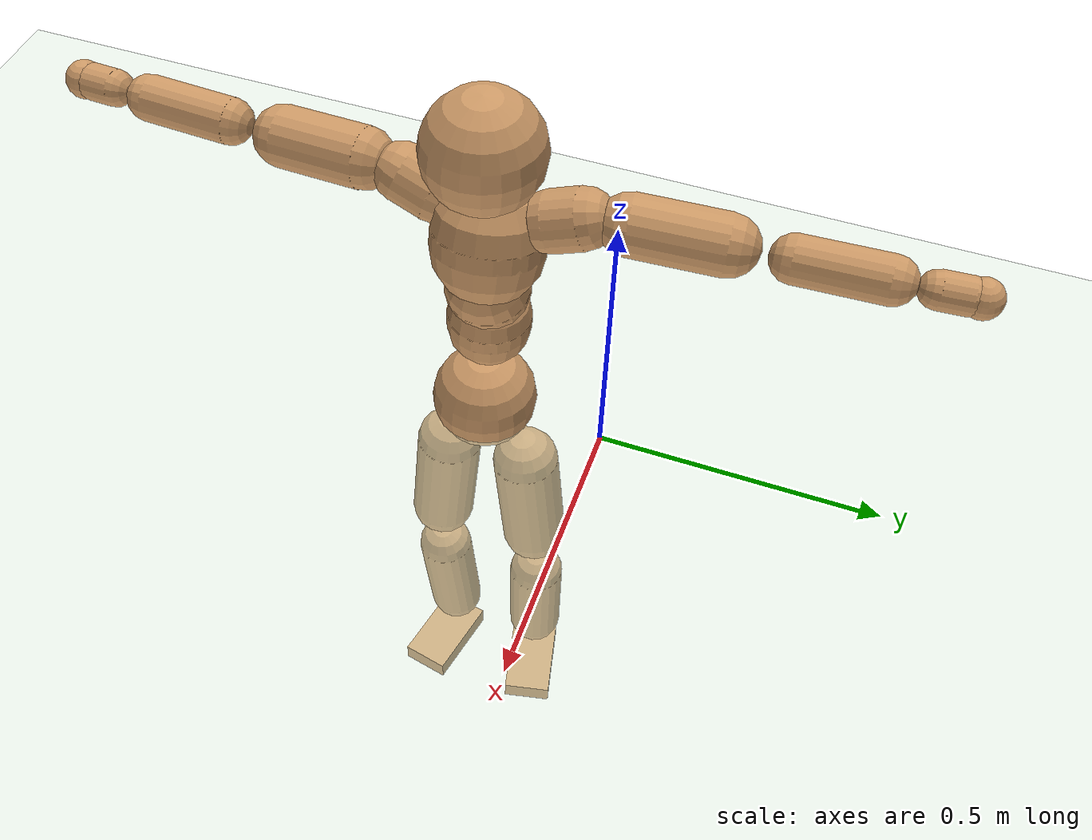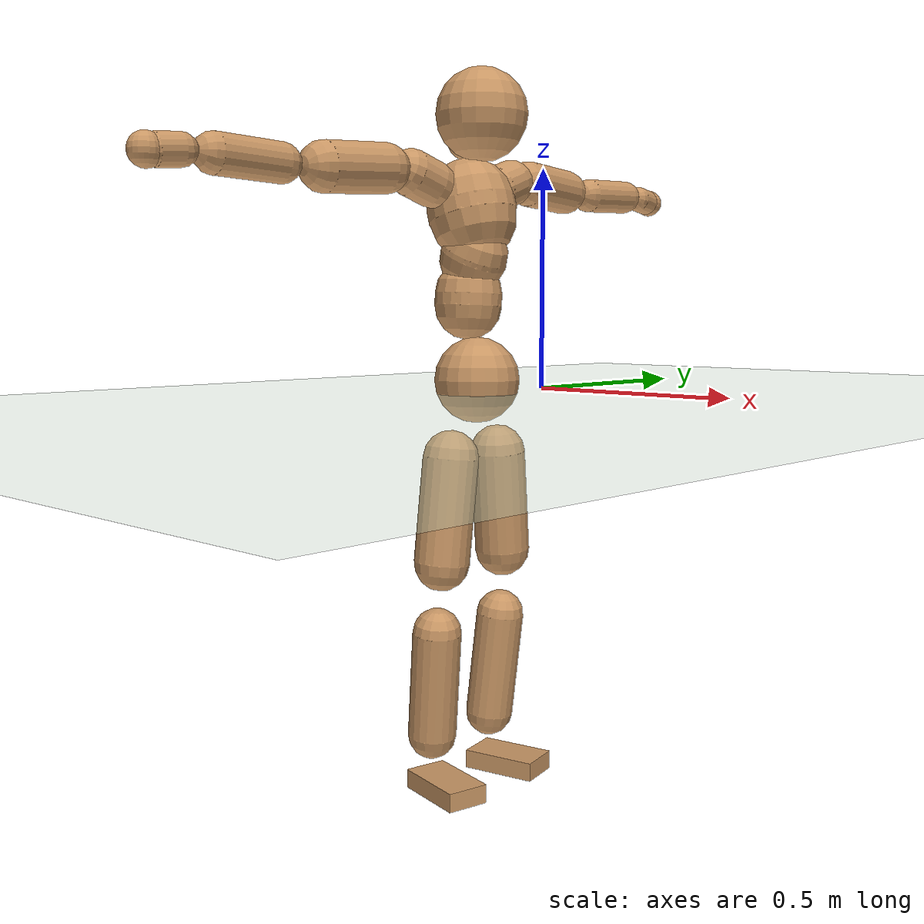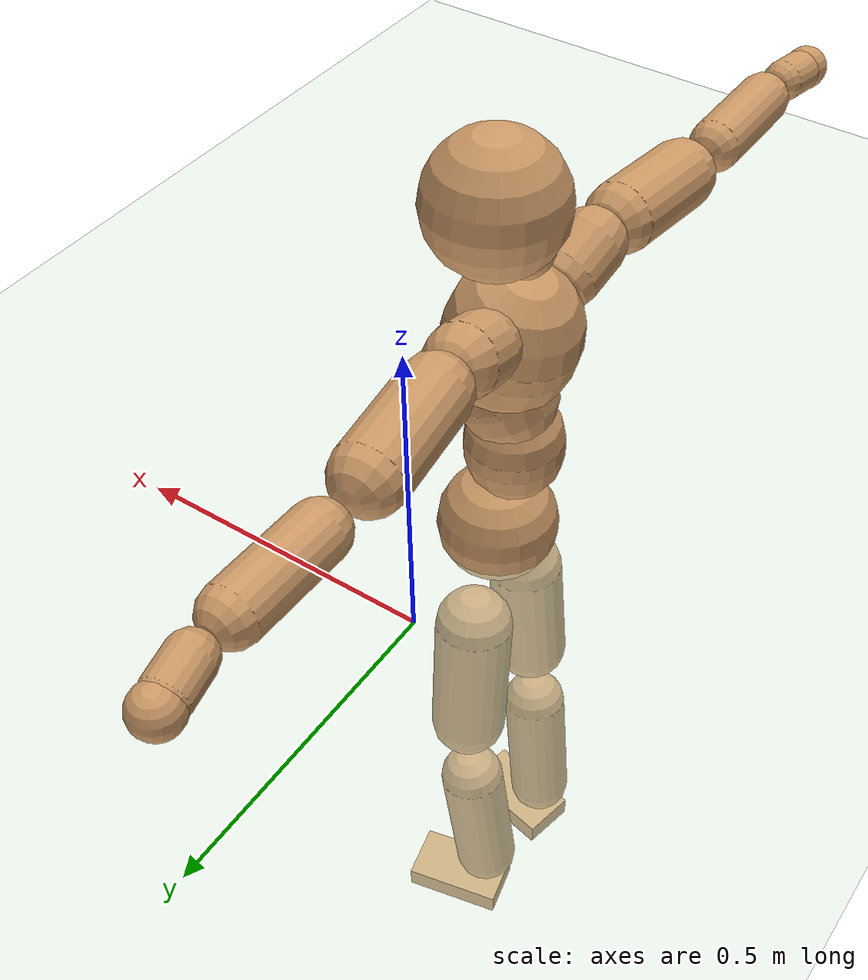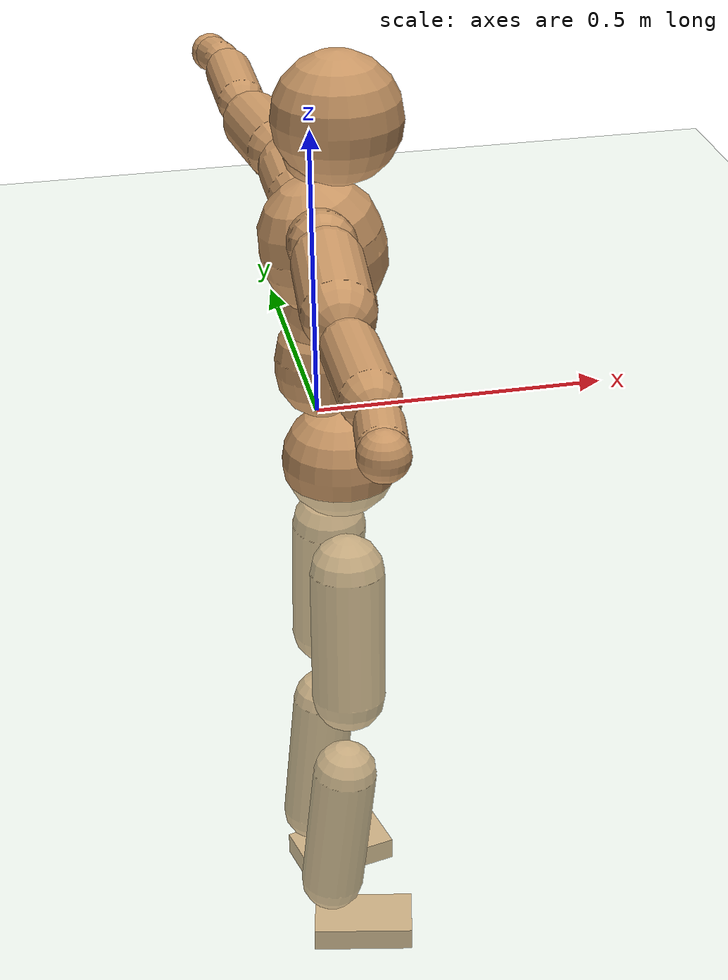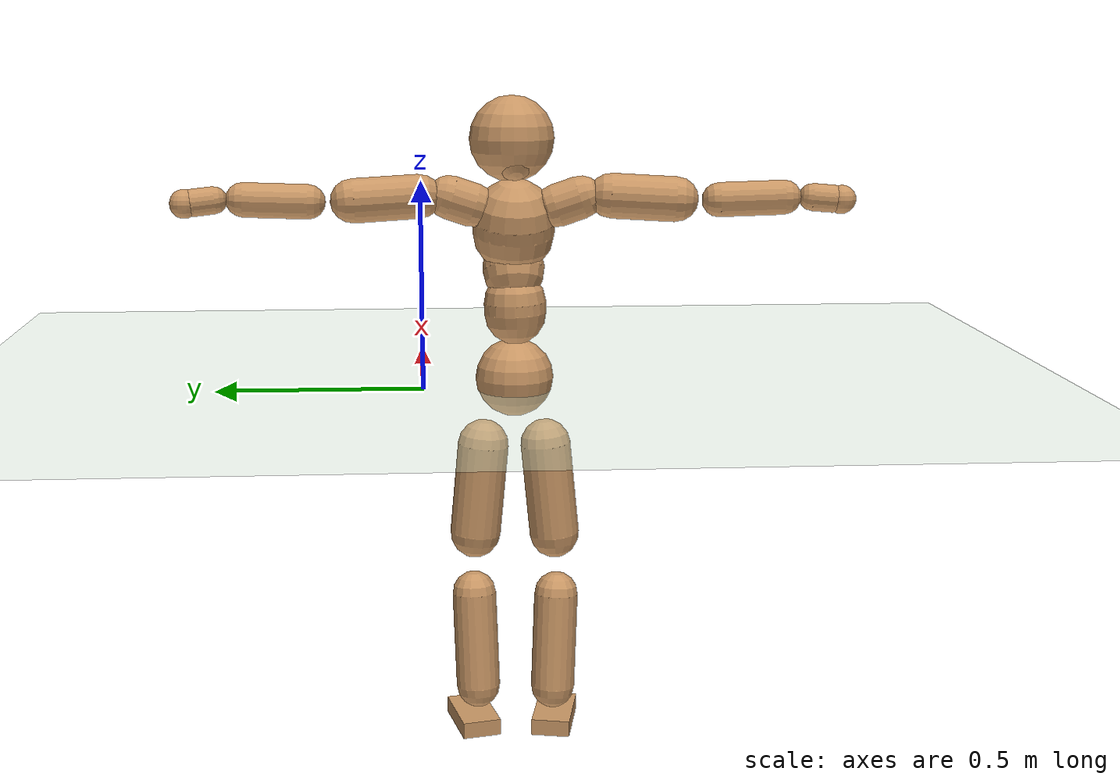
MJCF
<mujoco model="humanoid">
  <compiler coordinate="local"/>
  <default>
    <joint damping="0.0" armature="0.01" stiffness="0.0" limited="true"/>
    <geom conaffinity="1" condim="3" contype="7" margin="0.001" rgba="0.8 0.6 .4 1"/>
  </default>
  <asset>
    <texture type="skybox" builtin="gradient" rgb1=".4 .5 .6" rgb2="0 0 0" width="100" height="100"/>
    <texture builtin="flat" height="1278" mark="cross" markrgb="1 1 1" name="texgeom" random="0.01" rgb1="0.8 0.6 0.4" rgb2="0.8 0.6 0.4" type="cube" width="127"/>
    <texture builtin="checker" height="100" name="texplane" rgb1="0 0 0" rgb2="0.8 0.8 0.8" type="2d" width="100"/>
    <material name="MatPlane" reflectance="0.5" shininess="1" specular="1" texrepeat="60 60" texture="texplane"/>
    <material name="geom" texture="texgeom" texuniform="true"/>
  </asset>
  <worldbody>
    <light cutoff="100" diffuse="1 1 1" dir="-0 0 -1.3" directional="true" exponent="1" pos="0 0 1.3" specular=".1 .1 .1"/>
    <geom conaffinity="1" condim="3" name="floor" pos="0 0 0" rgba="0.8 0.9 0.8 1" size="100 100 .2" type="plane" material="MatPlane"/>
    <body name="Pelvis" pos="-0.0017 -0.2199 0.0279">
      <freejoint name="Pelvis"/>
      <geom type="sphere" contype="1" conaffinity="1" density="500" size="0.0941" pos="0.0000 0.0000 0.0000" name="Pelvis"/>
      <body name="L_Hip" pos="-0.007 0.07 -0.0911">
        <joint name="L_Hip_x" type="hinge" pos="0 0 0" axis="1 0 0" stiffness="800" damping="80" armature="0.02" range="-180.0000 180.0000"/>
        <joint name="L_Hip_y" type="hinge" pos="0 0 0" axis="0 1 0" stiffness="800" damping="80" armature="0.02" range="-180.0000 180.0000"/>
        <joint name="L_Hip_z" type="hinge" pos="0 0 0" axis="0 0 1" stiffness="800" damping="80" armature="0.02" range="-180.0000 180.0000"/>
        <geom type="capsule" contype="1" conaffinity="1" density="500" fromto="-0.0010 0.0068 -0.0750 -0.0040 0.0271 -0.2999" size="0.0617" name="L_Hip"/>
        <body name="L_Knee" pos="-0.0051 0.0339 -0.3749">
          <joint name="L_Knee_x" type="hinge" pos="0 0 0" axis="1 0 0" stiffness="800" damping="80" armature="0.02" range="-180.0000 180.0000"/>
          <joint name="L_Knee_y" type="hinge" pos="0 0 0" axis="0 1 0" stiffness="800" damping="80" armature="0.02" range="-180.0000 180.0000"/>
          <joint name="L_Knee_z" type="hinge" pos="0 0 0" axis="0 0 1" stiffness="800" damping="80" armature="0.02" range="-180.0000 180.0000"/>
          <geom type="capsule" contype="1" conaffinity="1" density="500" fromto="-0.0088 -0.0026 -0.0792 -0.0351 -0.0105 -0.3170" size="0.0539" name="L_Knee"/>
          <body name="L_Ankle" pos="-0.0438 -0.0131 -0.3962">
            <joint name="L_Ankle_x" type="hinge" pos="0 0 0" axis="1 0 0" stiffness="800" damping="80" armature="0.02" range="-180.0000 180.0000"/>
            <joint name="L_Ankle_y" type="hinge" pos="0 0 0" axis="0 1 0" stiffness="800" damping="80" armature="0.02" range="-180.0000 180.0000"/>
            <joint name="L_Ankle_z" type="hinge" pos="0 0 0" axis="0 0 1" stiffness="800" damping="80" armature="0.02" range="-180.0000 180.0000"/>
            <geom type="box" contype="1" conaffinity="1" density="500" pos="0.0590 0.0131 -0.0278" size="0.0841 0.0479 0.0206" quat="0.9940 0.0000 0.0000 0.1091" name="L_Ankle"/>
            <body name="L_Toe" pos="0.118 0.0262 -0.0556">
              <joint name="L_Toe_x" type="hinge" pos="0 0 0" axis="1 0 0" stiffness="500" damping="50" armature="0.02" range="-180.0000 180.0000"/>
              <joint name="L_Toe_y" type="hinge" pos="0 0 0" axis="0 1 0" stiffness="500" damping="50" armature="0.02" range="-180.0000 180.0000"/>
              <joint name="L_Toe_z" type="hinge" pos="0 0 0" axis="0 0 1" stiffness="500" damping="50" armature="0.02" range="-180.0000 180.0000"/>
              <geom type="box" contype="1" conaffinity="1" density="500" pos="0.0000 0.0000 0.0270" size="0.001 0.0024 0.001" quat="0.9933 0.0000 0.0000 0.1152" name="L_Toe"/>
            </body>
          </body>
        </body>
      </body>
      <body name="R_Hip" pos="-0.0044 -0.0681 -0.0903">
        <joint name="R_Hip_x" type="hinge" pos="0 0 0" axis="1 0 0" stiffness="800" damping="80" armature="0.02" range="-180.0000 180.0000"/>
        <joint name="R_Hip_y" type="hinge" pos="0 0 0" axis="0 1 0" stiffness="800" damping="80" armature="0.02" range="-180.0000 180.0000"/>
        <joint name="R_Hip_z" type="hinge" pos="0 0 0" axis="0 0 1" stiffness="800" damping="80" armature="0.02" range="-180.0000 180.0000"/>
        <geom type="capsule" contype="1" conaffinity="1" density="500" fromto="-0.0018 -0.0076 -0.0764 -0.0073 -0.0305 -0.3055" size="0.0608" name="R_Hip"/>
        <body name="R_Knee" pos="-0.0092 -0.0382 -0.3819">
          <joint name="R_Knee_x" type="hinge" pos="0 0 0" axis="1 0 0" stiffness="800" damping="80" armature="0.02" range="-180.0000 180.0000"/>
          <joint name="R_Knee_y" type="hinge" pos="0 0 0" axis="0 1 0" stiffness="800" damping="80" armature="0.02" range="-180.0000 180.0000"/>
          <joint name="R_Knee_z" type="hinge" pos="0 0 0" axis="0 0 1" stiffness="800" damping="80" armature="0.02" range="-180.0000 180.0000"/>
          <geom type="capsule" contype="1" conaffinity="1" density="500" fromto="-0.0085 0.0031 -0.0793 -0.0339 0.0123 -0.3173" size="0.054" name="R_Knee"/>
          <body name="R_Ankle" pos="-0.0424 0.0154 -0.3966">
            <joint name="R_Ankle_x" type="hinge" pos="0 0 0" axis="1 0 0" stiffness="800" damping="80" armature="0.02" range="-180.0000 180.0000"/>
            <joint name="R_Ankle_y" type="hinge" pos="0 0 0" axis="0 1 0" stiffness="800" damping="80" armature="0.02" range="-180.0000 180.0000"/>
            <joint name="R_Ankle_z" type="hinge" pos="0 0 0" axis="0 0 1" stiffness="800" damping="80" armature="0.02" range="-180.0000 180.0000"/>
            <geom type="box" contype="1" conaffinity="1" density="500" pos="0.0610 -0.0125 -0.0240" size="0.0856 0.0477 0.0206" quat="0.9949 0.0000 0.0000 -0.1011" name="R_Ankle"/>
            <body name="R_Toe" pos="0.122 -0.0251 -0.048">
              <joint name="R_Toe_x" type="hinge" pos="0 0 0" axis="1 0 0" stiffness="500" damping="50" armature="0.02" range="-180.0000 180.0000"/>
              <joint name="R_Toe_y" type="hinge" pos="0 0 0" axis="0 1 0" stiffness="500" damping="50" armature="0.02" range="-180.0000 180.0000"/>
              <joint name="R_Toe_z" type="hinge" pos="0 0 0" axis="0 0 1" stiffness="500" damping="50" armature="0.02" range="-180.0000 180.0000"/>
              <geom type="box" contype="1" conaffinity="1" density="500" pos="0.0000 0.0000 0.0250" size="0.001 0.0024 0.0011" quat="0.9958 0.0000 0.0000 -0.0918" name="R_Toe"/>
            </body>
          </body>
        </body>
      </body>
      <body name="Torso" pos="-0.0259 -0.0025 0.108">
        <joint name="Torso_x" type="hinge" pos="0 0 0" axis="1 0 0" stiffness="1000" damping="100" armature="0.02" range="-180.0000 180.0000"/>
        <joint name="Torso_y" type="hinge" pos="0 0 0" axis="0 1 0" stiffness="1000" damping="100" armature="0.02" range="-180.0000 180.0000"/>
        <joint name="Torso_z" type="hinge" pos="0 0 0" axis="0 0 1" stiffness="1000" damping="100" armature="0.02" range="-180.0000 180.0000"/>
        <geom type="capsule" contype="1" conaffinity="1" density="500" fromto="0.0005 0.0031 0.0801 0.0003 0.0021 0.0534" size="0.0739" name="Torso"/>
        <body name="Spine" pos="0.0008 0.0051 0.1335">
          <joint name="Spine_x" type="hinge" pos="0 0 0" axis="1 0 0" stiffness="1000" damping="100" armature="0.02" range="-180.0000 180.0000"/>
          <joint name="Spine_y" type="hinge" pos="0 0 0" axis="0 1 0" stiffness="1000" damping="100" armature="0.02" range="-180.0000 180.0000"/>
          <joint name="Spine_z" type="hinge" pos="0 0 0" axis="0 0 1" stiffness="1000" damping="100" armature="0.02" range="-180.0000 180.0000"/>
          <geom type="capsule" contype="1" conaffinity="1" density="500" fromto="0.0155 0.0009 0.0312 0.0104 0.0006 0.0208" size="0.0737" name="Spine"/>
          <body name="Chest" pos="0.0259 0.0015 0.0521">
            <joint name="Chest_x" type="hinge" pos="0 0 0" axis="1 0 0" stiffness="1000" damping="100" armature="0.02" range="-180.0000 180.0000"/>
            <joint name="Chest_y" type="hinge" pos="0 0 0" axis="0 1 0" stiffness="1000" damping="100" armature="0.02" range="-180.0000 180.0000"/>
            <joint name="Chest_z" type="hinge" pos="0 0 0" axis="0 0 1" stiffness="1000" damping="100" armature="0.02" range="-180.0000 180.0000"/>
            <geom type="capsule" contype="1" conaffinity="1" density="500" fromto="-0.0232 -0.0011 0.0899 -0.0155 -0.0007 0.0600" size="0.0969" name="Chest"/>
            <body name="Neck" pos="-0.0435 -0.0027 0.2115">
              <joint name="Neck_x" type="hinge" pos="0 0 0" axis="1 0 0" stiffness="500" damping="50" armature="0.02" range="-180.0000 180.0000"/>
              <joint name="Neck_y" type="hinge" pos="0 0 0" axis="0 1 0" stiffness="500" damping="50" armature="0.02" range="-180.0000 180.0000"/>
              <joint name="Neck_z" type="hinge" pos="0 0 0" axis="0 0 1" stiffness="500" damping="50" armature="0.02" range="-180.0000 180.0000"/>
              <geom type="capsule" contype="1" conaffinity="1" density="500" fromto="0.0101 0.0010 0.0128 0.0406 0.0038 0.0512" size="0.043" name="Neck"/>
              <body name="Head" pos="0.0507 0.0048 0.064">
                <joint name="Head_x" type="hinge" pos="0 0 0" axis="1 0 0" stiffness="500" damping="50" armature="0.02" range="-180.0000 180.0000"/>
                <joint name="Head_y" type="hinge" pos="0 0 0" axis="0 1 0" stiffness="500" damping="50" armature="0.02" range="-180.0000 180.0000"/>
                <joint name="Head_z" type="hinge" pos="0 0 0" axis="0 0 1" stiffness="500" damping="50" armature="0.02" range="-180.0000 180.0000"/>
                <geom type="sphere" contype="1" conaffinity="1" density="500" size="0.1003" pos="0.0000 0.0000 0.0000" name="Head"/>
              </body>
            </body>
            <body name="L_Thorax" pos="-0.0339 0.0783 0.1205">
              <joint name="L_Thorax_x" type="hinge" pos="0 0 0" axis="1 0 0" stiffness="500" damping="50" armature="0.02" range="-180.0000 180.0000"/>
              <joint name="L_Thorax_y" type="hinge" pos="0 0 0" axis="0 1 0" stiffness="500" damping="50" armature="0.02" range="-180.0000 180.0000"/>
              <joint name="L_Thorax_z" type="hinge" pos="0 0 0" axis="0 0 1" stiffness="500" damping="50" armature="0.02" range="-180.0000 180.0000"/>
              <geom type="capsule" contype="1" conaffinity="1" density="500" fromto="-0.0018 0.0180 0.0061 -0.0071 0.0718 0.0246" size="0.0516" name="L_Thorax"/>
              <body name="L_Shoulder" pos="-0.0088 0.0898 0.0307">
                <joint name="L_Shoulder_x" type="hinge" pos="0 0 0" axis="1 0 0" stiffness="500" damping="50" armature="0.02" range="-720.0000 720.0000"/>
                <joint name="L_Shoulder_y" type="hinge" pos="0 0 0" axis="0 1 0" stiffness="500" damping="50" armature="0.02" range="-720.0000 720.0000"/>
                <joint name="L_Shoulder_z" type="hinge" pos="0 0 0" axis="0 0 1" stiffness="500" damping="50" armature="0.02" range="-720.0000 720.0000"/>
                <geom type="capsule" contype="1" conaffinity="1" density="500" fromto="-0.0055 0.0515 -0.0025 -0.0220 0.2059 -0.0101" size="0.0514" name="L_Shoulder"/>
                <body name="L_Elbow" pos="-0.0275 0.2574 -0.0126">
                  <joint name="L_Elbow_x" type="hinge" pos="0 0 0" axis="1 0 0" stiffness="500" damping="50" armature="0.02" range="-720.0000 720.0000"/>
                  <joint name="L_Elbow_y" type="hinge" pos="0 0 0" axis="0 1 0" stiffness="500" damping="50" armature="0.02" range="-720.0000 720.0000"/>
                  <joint name="L_Elbow_z" type="hinge" pos="0 0 0" axis="0 0 1" stiffness="500" damping="50" armature="0.02" range="-720.0000 720.0000"/>
                  <geom type="capsule" contype="1" conaffinity="1" density="500" fromto="-0.0002 0.0493 0.0018 -0.0008 0.1972 0.0072" size="0.0401" name="L_Elbow"/>
                  <body name="L_Wrist" pos="-0.0011 0.2465 0.009">
                    <joint name="L_Wrist_x" type="hinge" pos="0 0 0" axis="1 0 0" stiffness="300" damping="30" armature="0.02" range="-180.0000 180.0000"/>
                    <joint name="L_Wrist_y" type="hinge" pos="0 0 0" axis="0 1 0" stiffness="300" damping="30" armature="0.02" range="-180.0000 180.0000"/>
                    <joint name="L_Wrist_z" type="hinge" pos="0 0 0" axis="0 0 1" stiffness="300" damping="30" armature="0.02" range="-180.0000 180.0000"/>
                    <geom type="capsule" contype="1" conaffinity="1" density="500" fromto="-0.0029 0.0166 -0.0017 -0.0117 0.0663 -0.0067" size="0.0314" name="L_Wrist"/>
                    <body name="L_Hand" pos="-0.0146 0.0828 -0.0084">
                      <joint name="L_Hand_x" type="hinge" pos="0 0 0" axis="1 0 0" stiffness="300" damping="30" armature="0.02" range="-180.0000 180.0000"/>
                      <joint name="L_Hand_y" type="hinge" pos="0 0 0" axis="0 1 0" stiffness="300" damping="30" armature="0.02" range="-180.0000 180.0000"/>
                      <joint name="L_Hand_z" type="hinge" pos="0 0 0" axis="0 0 1" stiffness="300" damping="30" armature="0.02" range="-180.0000 180.0000"/>
                      <geom type="sphere" contype="1" conaffinity="1" density="500" size="0.0332" pos="0.0000 0.0000 0.0000" name="L_Hand"/>
                    </body>
                  </body>
                </body>
              </body>
            </body>
            <body name="R_Thorax" pos="-0.0385 -0.081 0.1177">
              <joint name="R_Thorax_x" type="hinge" pos="0 0 0" axis="1 0 0" stiffness="500" damping="50" armature="0.02" range="-180.0000 180.0000"/>
              <joint name="R_Thorax_y" type="hinge" pos="0 0 0" axis="0 1 0" stiffness="500" damping="50" armature="0.02" range="-180.0000 180.0000"/>
              <joint name="R_Thorax_z" type="hinge" pos="0 0 0" axis="0 0 1" stiffness="500" damping="50" armature="0.02" range="-180.0000 180.0000"/>
              <geom type="capsule" contype="1" conaffinity="1" density="500" fromto="-0.0019 -0.0189 0.0065 -0.0075 -0.0756 0.0261" size="0.0506" name="R_Thorax"/>
              <body name="R_Shoulder" pos="-0.0093 -0.0946 0.0327">
                <joint name="R_Shoulder_x" type="hinge" pos="0 0 0" axis="1 0 0" stiffness="500" damping="50" armature="0.02" range="-720.0000 720.0000"/>
                <joint name="R_Shoulder_y" type="hinge" pos="0 0 0" axis="0 1 0" stiffness="500" damping="50" armature="0.02" range="-720.0000 720.0000"/>
                <joint name="R_Shoulder_z" type="hinge" pos="0 0 0" axis="0 0 1" stiffness="500" damping="50" armature="0.02" range="-720.0000 720.0000"/>
                <geom type="capsule" contype="1" conaffinity="1" density="500" fromto="-0.0043 -0.0503 -0.0027 -0.0170 -0.2010 -0.0106" size="0.0528" name="R_Shoulder"/>
                <body name="R_Elbow" pos="-0.0213 -0.2513 -0.0133">
                  <joint name="R_Elbow_x" type="hinge" pos="0 0 0" axis="1 0 0" stiffness="500" damping="50" armature="0.02" range="-720.0000 720.0000"/>
                  <joint name="R_Elbow_y" type="hinge" pos="0 0 0" axis="0 1 0" stiffness="500" damping="50" armature="0.02" range="-720.0000 720.0000"/>
                  <joint name="R_Elbow_z" type="hinge" pos="0 0 0" axis="0 0 1" stiffness="500" damping="50" armature="0.02" range="-720.0000 720.0000"/>
                  <geom type="capsule" contype="1" conaffinity="1" density="500" fromto="-0.0010 -0.0505 0.0016 -0.0041 -0.2021 0.0064" size="0.0404" name="R_Elbow"/>
                  <body name="R_Wrist" pos="-0.0051 -0.2527 0.008">
                    <joint name="R_Wrist_x" type="hinge" pos="0 0 0" axis="1 0 0" stiffness="300" damping="30" armature="0.02" range="-180.0000 180.0000"/>
                    <joint name="R_Wrist_y" type="hinge" pos="0 0 0" axis="0 1 0" stiffness="300" damping="30" armature="0.02" range="-180.0000 180.0000"/>
                    <joint name="R_Wrist_z" type="hinge" pos="0 0 0" axis="0 0 1" stiffness="300" damping="30" armature="0.02" range="-180.0000 180.0000"/>
                    <geom type="capsule" contype="1" conaffinity="1" density="500" fromto="-0.0021 -0.0167 -0.0012 -0.0082 -0.0666 -0.0050" size="0.0321" name="R_Wrist"/>
                    <body name="R_Hand" pos="-0.0103 -0.0833 -0.0062">
                      <joint name="R_Hand_x" type="hinge" pos="0 0 0" axis="1 0 0" stiffness="300" damping="30" armature="0.02" range="-180.0000 180.0000"/>
                      <joint name="R_Hand_y" type="hinge" pos="0 0 0" axis="0 1 0" stiffness="300" damping="30" armature="0.02" range="-180.0000 180.0000"/>
                      <joint name="R_Hand_z" type="hinge" pos="0 0 0" axis="0 0 1" stiffness="300" damping="30" armature="0.02" range="-180.0000 180.0000"/>
                      <geom type="sphere" contype="1" conaffinity="1" density="500" size="0.0335" pos="0.0000 0.0000 0.0000" name="R_Hand"/>
                    </body>
                  </body>
                </body>
              </body>
            </body>
          </body>
        </body>
      </body>
    </body>
  </worldbody>
  <actuator>
    <motor name="L_Hip_x" joint="L_Hip_x" gear="500"/>
    <motor name="L_Hip_y" joint="L_Hip_y" gear="500"/>
    <motor name="L_Hip_z" joint="L_Hip_z" gear="500"/>
    <motor name="L_Knee_x" joint="L_Knee_x" gear="500"/>
    <motor name="L_Knee_y" joint="L_Knee_y" gear="500"/>
    <motor name="L_Knee_z" joint="L_Knee_z" gear="500"/>
    <motor name="L_Ankle_x" joint="L_Ankle_x" gear="500"/>
    <motor name="L_Ankle_y" joint="L_Ankle_y" gear="500"/>
    <motor name="L_Ankle_z" joint="L_Ankle_z" gear="500"/>
    <motor name="L_Toe_x" joint="L_Toe_x" gear="500"/>
    <motor name="L_Toe_y" joint="L_Toe_y" gear="500"/>
    <motor name="L_Toe_z" joint="L_Toe_z" gear="500"/>
    <motor name="R_Hip_x" joint="R_Hip_x" gear="500"/>
    <motor name="R_Hip_y" joint="R_Hip_y" gear="500"/>
    <motor name="R_Hip_z" joint="R_Hip_z" gear="500"/>
    <motor name="R_Knee_x" joint="R_Knee_x" gear="500"/>
    <motor name="R_Knee_y" joint="R_Knee_y" gear="500"/>
    <motor name="R_Knee_z" joint="R_Knee_z" gear="500"/>
    <motor name="R_Ankle_x" joint="R_Ankle_x" gear="500"/>
    <motor name="R_Ankle_y" joint="R_Ankle_y" gear="500"/>
    <motor name="R_Ankle_z" joint="R_Ankle_z" gear="500"/>
    <motor name="R_Toe_x" joint="R_Toe_x" gear="500"/>
    <motor name="R_Toe_y" joint="R_Toe_y" gear="500"/>
    <motor name="R_Toe_z" joint="R_Toe_z" gear="500"/>
    <motor name="Torso_x" joint="Torso_x" gear="500"/>
    <motor name="Torso_y" joint="Torso_y" gear="500"/>
    <motor name="Torso_z" joint="Torso_z" gear="500"/>
    <motor name="Spine_x" joint="Spine_x" gear="500"/>
    <motor name="Spine_y" joint="Spine_y" gear="500"/>
    <motor name="Spine_z" joint="Spine_z" gear="500"/>
    <motor name="Chest_x" joint="Chest_x" gear="500"/>
    <motor name="Chest_y" joint="Chest_y" gear="500"/>
    <motor name="Chest_z" joint="Chest_z" gear="500"/>
    <motor name="Neck_x" joint="Neck_x" gear="500"/>
    <motor name="Neck_y" joint="Neck_y" gear="500"/>
    <motor name="Neck_z" joint="Neck_z" gear="500"/>
    <motor name="Head_x" joint="Head_x" gear="500"/>
    <motor name="Head_y" joint="Head_y" gear="500"/>
    <motor name="Head_z" joint="Head_z" gear="500"/>
    <motor name="L_Thorax_x" joint="L_Thorax_x" gear="500"/>
    <motor name="L_Thorax_y" joint="L_Thorax_y" gear="500"/>
    <motor name="L_Thorax_z" joint="L_Thorax_z" gear="500"/>
    <motor name="L_Shoulder_x" joint="L_Shoulder_x" gear="500"/>
    <motor name="L_Shoulder_y" joint="L_Shoulder_y" gear="500"/>
    <motor name="L_Shoulder_z" joint="L_Shoulder_z" gear="500"/>
    <motor name="L_Elbow_x" joint="L_Elbow_x" gear="500"/>
    <motor name="L_Elbow_y" joint="L_Elbow_y" gear="500"/>
    <motor name="L_Elbow_z" joint="L_Elbow_z" gear="500"/>
    <motor name="L_Wrist_x" joint="L_Wrist_x" gear="500"/>
    <motor name="L_Wrist_y" joint="L_Wrist_y" gear="500"/>
    <motor name="L_Wrist_z" joint="L_Wrist_z" gear="500"/>
    <motor name="L_Hand_x" joint="L_Hand_x" gear="500"/>
    <motor name="L_Hand_y" joint="L_Hand_y" gear="500"/>
    <motor name="L_Hand_z" joint="L_Hand_z" gear="500"/>
    <motor name="R_Thorax_x" joint="R_Thorax_x" gear="500"/>
    <motor name="R_Thorax_y" joint="R_Thorax_y" gear="500"/>
    <motor name="R_Thorax_z" joint="R_Thorax_z" gear="500"/>
    <motor name="R_Shoulder_x" joint="R_Shoulder_x" gear="500"/>
    <motor name="R_Shoulder_y" joint="R_Shoulder_y" gear="500"/>
    <motor name="R_Shoulder_z" joint="R_Shoulder_z" gear="500"/>
    <motor name="R_Elbow_x" joint="R_Elbow_x" gear="500"/>
    <motor name="R_Elbow_y" joint="R_Elbow_y" gear="500"/>
    <motor name="R_Elbow_z" joint="R_Elbow_z" gear="500"/>
    <motor name="R_Wrist_x" joint="R_Wrist_x" gear="500"/>
    <motor name="R_Wrist_y" joint="R_Wrist_y" gear="500"/>
    <motor name="R_Wrist_z" joint="R_Wrist_z" gear="500"/>
    <motor name="R_Hand_x" joint="R_Hand_x" gear="500"/>
    <motor name="R_Hand_y" joint="R_Hand_y" gear="500"/>
    <motor name="R_Hand_z" joint="R_Hand_z" gear="500"/>
  </actuator>
  <contact>
    <exclude body1="Torso" body2="Chest"/>
    <exclude body1="Head" body2="Chest"/>
    <exclude body1="R_Knee" body2="R_Toe"/>
    <exclude body1="R_Knee" body2="L_Ankle"/>
    <exclude body1="R_Knee" body2="L_Toe"/>
    <exclude body1="L_Knee" body2="L_Toe"/>
    <exclude body1="L_Knee" body2="R_Ankle"/>
    <exclude body1="L_Knee" body2="R_Toe"/>
    <exclude body1="L_Shoulder" body2="Chest"/>
    <exclude body1="R_Shoulder" body2="Chest"/>
  </contact>
  <sensor/>
  <size njmax="700" nconmax="700"/>
</mujoco>
